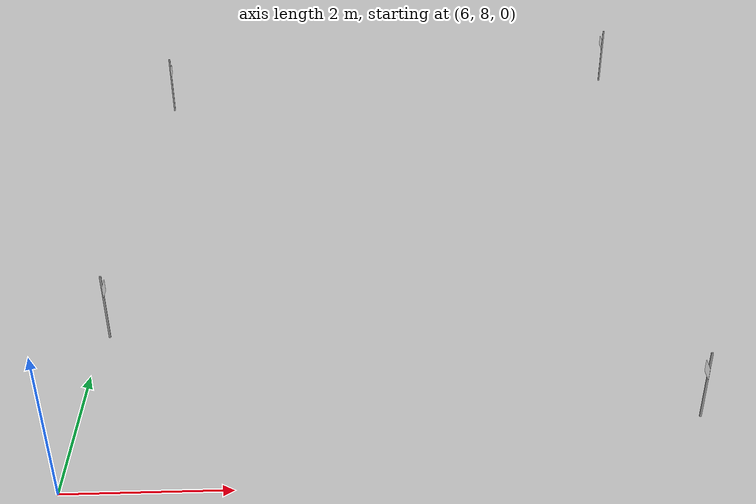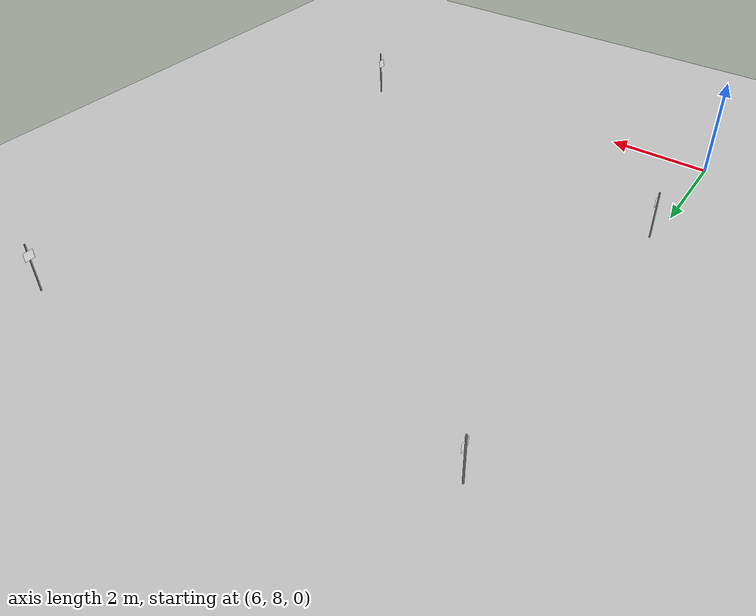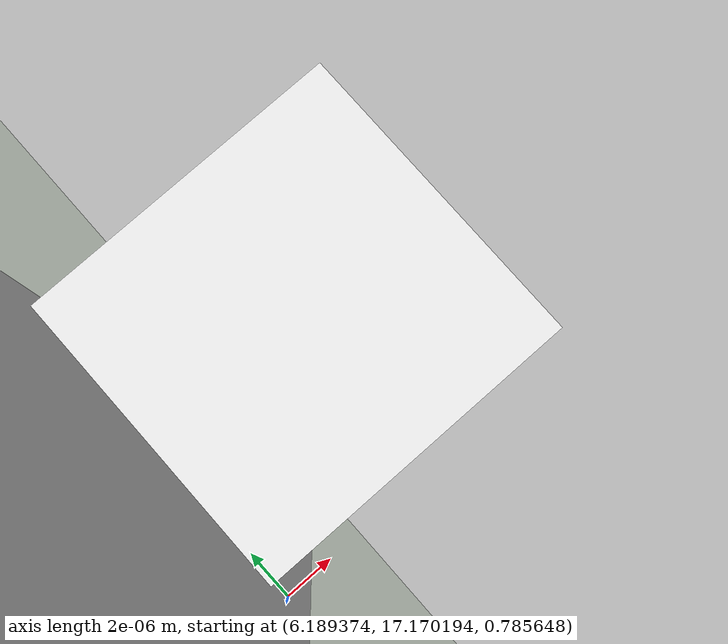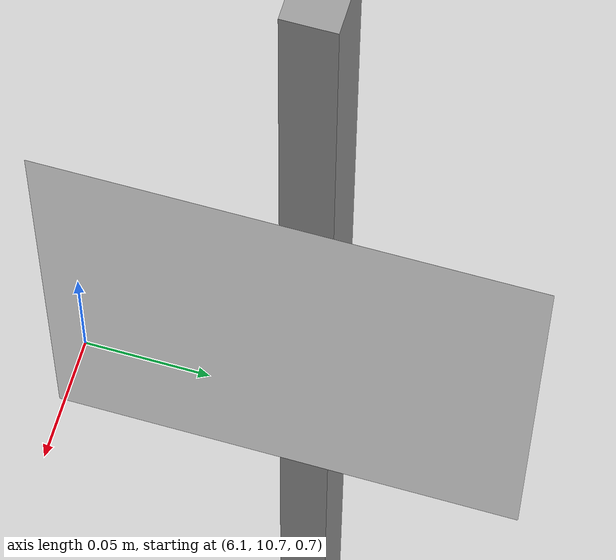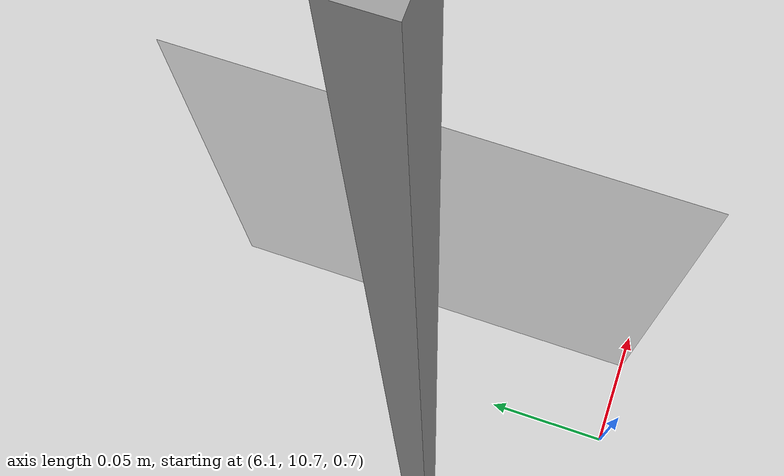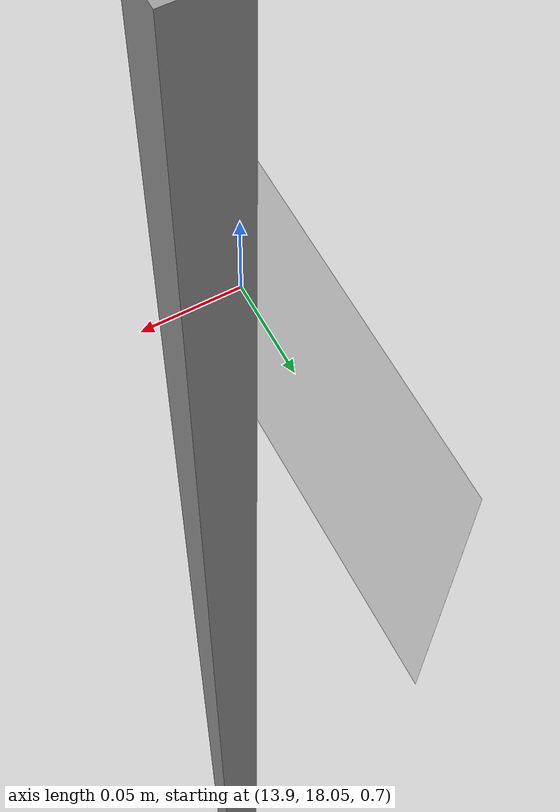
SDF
<sdf version="1.6">
 <world name="default">
  <light name="sun" type="directional">
   <pose>0 0 10 0 -0 0</pose>
   <diffuse>0.8 0.8 0.8 1</diffuse>
   <specular>0.1 0.1 0.1 1</specular>
   <attenuation>
    <range>1000</range>
    <constant>0.9</constant>
    <linear>0.01</linear>
    <quadratic>0.001</quadratic>
   </attenuation>
   <direction>-0.5 0.5 -1</direction>
  </light>
  <model name="ground_plane">
   <static>1</static>
   <link name="link">
    <collision name="collision">
     <geometry><plane><normal>0 0 1</normal><size>100 100</size></plane></geometry>
     <surface><friction><ode><mu>100</mu><mu2>50</mu2></ode></friction></surface>
    </collision>
    <visual name="visual">
     <cast_shadows>0</cast_shadows>
     <geometry><plane><normal>0 0 1</normal><size>100 100</size></plane></geometry>
     <material>
      <script><uri>file://media/materials/scripts/gazebo.material</uri><name>Gazebo/Grey</name></script>
     </material>
    </visual>
   </link>
  </model>
  <gravity>0 0 -9.8</gravity>
  <magnetic_field>6e-06 2.3e-05 -4.2e-05</magnetic_field>
  <atmosphere type="adiabatic"/>
  <physics name="default_physics" default="0" type="ode">
   <max_step_size>0.001</max_step_size>
   <real_time_factor>1</real_time_factor>
   <real_time_update_rate>1000</real_time_update_rate>
  </physics>
  <scene><ambient>0.4 0.4 0.4 1</ambient><background>0.7 0.7 0.7 1</background><shadows>1</shadows></scene>
  <spherical_coordinates>
   <surface_model>EARTH_WGS84</surface_model>
   <latitude_deg>0</latitude_deg>
   <longitude_deg>0</longitude_deg>
   <elevation>0</elevation>
   <heading_deg>0</heading_deg>
  </spherical_coordinates>
  <model name="aruco_visual_marker_0">
   <link name="marker">
    <visual name="visual">
     <geometry><box><size>0.1778 0.1778 1e-05</size></box></geometry>
     <material>
      <script>
       <uri>model://aruco_visual_marker_0/materials/scripts</uri>
       <uri>model://aruco_visual_marker_0/materials/textures</uri>
       <name>ArucoVisualMarker0/Marker</name>
      </script>
      <ambient>1 1 1 1</ambient>
      <diffuse>1 1 1 1</diffuse>
      <specular>0 0 0 1</specular>
      <emissive>1 1 1 0</emissive>
      <shader type="vertex"><normal_map>__default__</normal_map></shader>
     </material>
    </visual>
    <collision name="collision"><geometry><box><size>0.1778 0.1778 1e-05</size></box></geometry></collision>
   </link>
   <link name="marker_pad">
    <pose frame="marker">0 0 -1e-05 0 -0 0</pose>
    <visual name="visual">
     <geometry><box><size>1e-05 1e-05 1e-05</size></box></geometry>
     <material>
      <lighting>1</lighting>
      <script><uri>file://media/materials/scripts/gazebo.material</uri><name>Gazebo/White</name></script>
      <ambient>0.3 0.3 0.3 1</ambient>
      <diffuse>0.7 0.7 0.7 1</diffuse>
      <specular>0.01 0.01 0.01 1</specular>
      <emissive>1 1 1 0</emissive>
      <shader type="vertex"><normal_map>__default__</normal_map></shader>
     </material>
    </visual>
    <collision name="collision"><geometry><box><size>0.1778 0.1778 1e-05</size></box></geometry></collision>
   </link>
   <joint name="marker_JOINT_marker_pad" type="revolute">
    <parent>marker</parent>
    <child>marker_pad</child>
    <axis>
     <xyz>0 0 1</xyz>
     <limit><upper>0</upper><lower>0</lower></limit>
     <use_parent_model_frame>0</use_parent_model_frame>
     <dynamics><spring_reference>0</spring_reference><spring_stiffness>0</spring_stiffness></dynamics>
    </axis>
   </joint>
   <static>1</static>
   <pose>13.5666 9.05153 0.744645 3.14159 -1.57079 3.14159</pose>
  </model>
  <model name="aruco_visual_marker_1">
   <link name="marker">
    <visual name="visual">
     <geometry><box><size>0.1778 0.1778 1e-05</size></box></geometry>
     <material>
      <script>
       <uri>model://aruco_visual_marker_1/materials/scripts</uri>
       <uri>model://aruco_visual_marker_1/materials/textures</uri>
       <name>ArucoVisualMarker1/Marker</name>
      </script>
      <ambient>1 1 1 1</ambient>
      <diffuse>1 1 1 1</diffuse>
      <specular>0 0 0 1</specular>
      <emissive>1 1 1 0</emissive>
      <shader type="vertex"><normal_map>__default__</normal_map></shader>
     </material>
    </visual>
    <collision name="collision"><geometry><box><size>0.1778 0.1778 1e-05</size></box></geometry></collision>
   </link>
   <link name="marker_pad">
    <pose frame="marker">0 0 -1e-05 0 -0 0</pose>
    <visual name="visual">
     <geometry><box><size>1e-05 1e-05 1e-05</size></box></geometry>
     <material>
      <lighting>1</lighting>
      <script><uri>file://media/materials/scripts/gazebo.material</uri><name>Gazebo/White</name></script>
      <ambient>0.3 0.3 0.3 1</ambient>
      <diffuse>0.7 0.7 0.7 1</diffuse>
      <specular>0.01 0.01 0.01 1</specular>
      <emissive>1 1 1 0</emissive>
      <shader type="vertex"><normal_map>__default__</normal_map></shader>
     </material>
    </visual>
    <collision name="collision"><geometry><box><size>0.1778 0.1778 1e-05</size></box></geometry></collision>
   </link>
   <joint name="marker_JOINT_marker_pad" type="revolute">
    <parent>marker</parent>
    <child>marker_pad</child>
    <axis>
     <xyz>0 0 1</xyz>
     <limit><upper>0</upper><lower>0</lower></limit>
     <use_parent_model_frame>0</use_parent_model_frame>
     <dynamics><spring_reference>0</spring_reference><spring_stiffness>0</spring_stiffness></dynamics>
    </axis>
   </joint>
   <static>1</static>
   <pose>13.9238 18.154 0.783528 -3.14159 -1.57079 -3.14159</pose>
  </model>
  <model name="aruco_visual_marker_2">
   <link name="marker">
    <visual name="visual">
     <geometry><box><size>0.1778 0.1778 1e-05</size></box></geometry>
     <material>
      <script>
       <uri>model://aruco_visual_marker_2/materials/scripts</uri>
       <uri>model://aruco_visual_marker_2/materials/textures</uri>
       <name>ArucoVisualMarker2/Marker</name>
      </script>
      <ambient>1 1 1 1</ambient>
      <diffuse>1 1 1 1</diffuse>
      <specular>0 0 0 1</specular>
      <emissive>1 1 1 0</emissive>
      <shader type="vertex"><normal_map>__default__</normal_map></shader>
     </material>
    </visual>
    <collision name="collision"><geometry><box><size>0.1778 0.1778 1e-05</size></box></geometry></collision>
   </link>
   <link name="marker_pad">
    <pose frame="marker">0 0 -1e-05 0 -0 0</pose>
    <visual name="visual">
     <geometry><box><size>1e-05 1e-05 1e-05</size></box></geometry>
     <material>
      <lighting>1</lighting>
      <script><uri>file://media/materials/scripts/gazebo.material</uri><name>Gazebo/White</name></script>
      <ambient>0.3 0.3 0.3 1</ambient>
      <diffuse>0.7 0.7 0.7 1</diffuse>
      <specular>0.01 0.01 0.01 1</specular>
      <emissive>1 1 1 0</emissive>
      <shader type="vertex"><normal_map>__default__</normal_map></shader>
     </material>
    </visual>
    <collision name="collision"><geometry><box><size>0.1778 0.1778 1e-05</size></box></geometry></collision>
   </link>
   <joint name="marker_JOINT_marker_pad" type="revolute">
    <parent>marker</parent>
    <child>marker_pad</child>
    <axis>
     <xyz>0 0 1</xyz>
     <limit><upper>0</upper><lower>0</lower></limit>
     <use_parent_model_frame>0</use_parent_model_frame>
     <dynamics><spring_reference>0</spring_reference><spring_stiffness>0</spring_stiffness></dynamics>
    </axis>
   </joint>
   <static>1</static>
   <pose>6.1317 10.7899 0.803579 -3e-06 -1.57079 3.14159</pose>
  </model>
  <model name="aruco_visual_marker_3">
   <link name="marker">
    <visual name="visual">
     <geometry><box><size>0.1778 0.1778 1e-05</size></box></geometry>
     <material>
      <script>
       <uri>model://aruco_visual_marker_3/materials/scripts</uri>
       <uri>model://aruco_visual_marker_3/materials/textures</uri>
       <name>ArucoVisualMarker3/Marker</name>
      </script>
      <ambient>1 1 1 1</ambient>
      <diffuse>1 1 1 1</diffuse>
      <specular>0 0 0 1</specular>
      <emissive>1 1 1 0</emissive>
      <shader type="vertex"><normal_map>__default__</normal_map></shader>
     </material>
    </visual>
    <collision name="collision"><geometry><box><size>0.1778 0.1778 1e-05</size></box></geometry></collision>
   </link>
   <link name="marker_pad">
    <pose frame="marker">0 0 -1e-05 0 -0 0</pose>
    <visual name="visual">
     <geometry><box><size>1e-05 1e-05 1e-05</size></box></geometry>
     <material>
      <lighting>1</lighting>
      <script><uri>file://media/materials/scripts/gazebo.material</uri><name>Gazebo/White</name></script>
      <ambient>0.3 0.3 0.3 1</ambient>
      <diffuse>0.7 0.7 0.7 1</diffuse>
      <specular>0.01 0.01 0.01 1</specular>
      <emissive>1 1 1 0</emissive>
      <shader type="vertex"><normal_map>__default__</normal_map></shader>
     </material>
    </visual>
    <collision name="collision"><geometry><box><size>0.1778 0.1778 1e-05</size></box></geometry></collision>
   </link>
   <joint name="marker_JOINT_marker_pad" type="revolute">
    <parent>marker</parent>
    <child>marker_pad</child>
    <axis>
     <xyz>0 0 1</xyz>
     <limit><upper>0</upper><lower>0</lower></limit>
     <use_parent_model_frame>0</use_parent_model_frame>
     <dynamics><spring_reference>0</spring_reference><spring_stiffness>0</spring_stiffness></dynamics>
    </axis>
   </joint>
   <static>1</static>
   <pose>6.18939 17.1702 0.785653 -0.00472 -1.57079 -3.13688</pose>
  </model>
  <model name="unit_box_0_0">
   <link name="link">
    <inertial>
     <mass>1</mass>
     <inertia>
      <ixx>0.166667</ixx>
      <ixy>0</ixy>
      <ixz>0</ixz>
      <iyy>0.166667</iyy>
      <iyz>0</iyz>
      <izz>0.166667</izz>
     </inertia>
    </inertial>
    <visual name="visual">
     <geometry><box><size>0.025351 0.018729 1</size></box></geometry>
     <material>
      <script><name>Gazebo/Grey</name><uri>file://media/materials/scripts/gazebo.material</uri></script>
      <ambient>1 1 1 1</ambient>
      <diffuse>0.7 0.7 0.7 1</diffuse>
      <specular>0.01 0.01 0.01 1</specular>
      <emissive>0.7 0.7 0.7 1</emissive>
      <shader type="vertex"><normal_map>__default__</normal_map></shader>
     </material>
    </visual>
    <collision name="collision">
     <geometry><box><size>0.025351 0.018729 1</size></box></geometry>
     <surface>
      <friction>
       <ode><mu>1</mu><mu2>1</mu2><fdir1>0 0 0</fdir1><slip1>0</slip1><slip2>0</slip2></ode>
       <torsional>
        <coefficient>1</coefficient>
        <patch_radius>0</patch_radius>
        <surface_radius>0</surface_radius>
        <use_patch_radius>1</use_patch_radius>
        <ode><slip>0</slip></ode>
       </torsional>
      </friction>
      <bounce><restitution_coefficient>0</restitution_coefficient><threshold>1e+06</threshold></bounce>
      <contact>
       <collide_without_contact>0</collide_without_contact>
       <collide_without_contact_bitmask>1</collide_without_contact_bitmask>
       <collide_bitmask>1</collide_bitmask>
       <ode>
        <soft_cfm>0</soft_cfm>
        <soft_erp>0.2</soft_erp>
        <kp>1e+13</kp>
        <kd>1</kd>
        <max_vel>0.01</max_vel>
        <min_depth>0</min_depth>
       </ode>
       <bullet>
        <split_impulse>1</split_impulse>
        <split_impulse_penetration_threshold>-0.01</split_impulse_penetration_threshold>
        <soft_cfm>0</soft_cfm>
        <soft_erp>0.2</soft_erp>
        <kp>1e+13</kp>
        <kd>1</kd>
       </bullet>
      </contact>
     </surface>
    </collision>
   </link>
   <static>0</static>
   <pose>13.9591 18.1431 0.5 2e-06 1.4e-05 0.000696</pose>
  </model>
  <model name="unit_box_0_0_clone">
   <link name="link">
    <inertial>
     <mass>1</mass>
     <inertia>
      <ixx>0.166667</ixx>
      <ixy>0</ixy>
      <ixz>0</ixz>
      <iyy>0.166667</iyy>
      <iyz>0</iyz>
      <izz>0.166667</izz>
     </inertia>
    </inertial>
    <visual name="visual">
     <geometry><box><size>0.025351 0.018729 1</size></box></geometry>
     <material>
      <script><name>Gazebo/Grey</name><uri>file://media/materials/scripts/gazebo.material</uri></script>
      <ambient>1 1 1 1</ambient>
      <diffuse>0.7 0.7 0.7 1</diffuse>
      <specular>0.01 0.01 0.01 1</specular>
      <emissive>0.7 0.7 0.7 1</emissive>
      <shader type="vertex"><normal_map>__default__</normal_map></shader>
     </material>
    </visual>
    <collision name="collision">
     <geometry><box><size>0.025351 0.018729 1</size></box></geometry>
     <surface>
      <friction>
       <ode><mu>1</mu><mu2>1</mu2><fdir1>0 0 0</fdir1><slip1>0</slip1><slip2>0</slip2></ode>
       <torsional>
        <coefficient>1</coefficient>
        <patch_radius>0</patch_radius>
        <surface_radius>0</surface_radius>
        <use_patch_radius>1</use_patch_radius>
        <ode><slip>0</slip></ode>
       </torsional>
      </friction>
      <bounce><restitution_coefficient>0</restitution_coefficient><threshold>1e+06</threshold></bounce>
      <contact>
       <collide_without_contact>0</collide_without_contact>
       <collide_without_contact_bitmask>1</collide_without_contact_bitmask>
       <collide_bitmask>1</collide_bitmask>
       <ode>
        <soft_cfm>0</soft_cfm>
        <soft_erp>0.2</soft_erp>
        <kp>1e+13</kp>
        <kd>1</kd>
        <max_vel>0.01</max_vel>
        <min_depth>0</min_depth>
       </ode>
       <bullet>
        <split_impulse>1</split_impulse>
        <split_impulse_penetration_threshold>-0.01</split_impulse_penetration_threshold>
        <soft_cfm>0</soft_cfm>
        <soft_erp>0.2</soft_erp>
        <kp>1e+13</kp>
        <kd>1</kd>
       </bullet>
      </contact>
     </surface>
    </collision>
   </link>
   <static>0</static>
   <pose>13.5892 9.05571 0.5 -7e-06 -1.2e-05 0.000374</pose>
  </model>
  <model name="unit_box_0_0_clone_0">
   <link name="link">
    <inertial>
     <mass>1</mass>
     <inertia>
      <ixx>0.166667</ixx>
      <ixy>0</ixy>
      <ixz>0</ixz>
      <iyy>0.166667</iyy>
      <iyz>0</iyz>
      <izz>0.166667</izz>
     </inertia>
    </inertial>
    <visual name="visual">
     <geometry><box><size>0.025351 0.018729 1</size></box></geometry>
     <material>
      <script><name>Gazebo/Grey</name><uri>file://media/materials/scripts/gazebo.material</uri></script>
      <ambient>1 1 1 1</ambient>
      <diffuse>0.7 0.7 0.7 1</diffuse>
      <specular>0.01 0.01 0.01 1</specular>
      <emissive>0.7 0.7 0.7 1</emissive>
      <shader type="vertex"><normal_map>__default__</normal_map></shader>
     </material>
    </visual>
    <collision name="collision">
     <geometry><box><size>0.025351 0.018729 1</size></box></geometry>
     <surface>
      <friction>
       <ode><mu>1</mu><mu2>1</mu2><fdir1>0 0 0</fdir1><slip1>0</slip1><slip2>0</slip2></ode>
       <torsional>
        <coefficient>1</coefficient>
        <patch_radius>0</patch_radius>
        <surface_radius>0</surface_radius>
        <use_patch_radius>1</use_patch_radius>
        <ode><slip>0</slip></ode>
       </torsional>
      </friction>
      <bounce><restitution_coefficient>0</restitution_coefficient><threshold>1e+06</threshold></bounce>
      <contact>
       <collide_without_contact>0</collide_without_contact>
       <collide_without_contact_bitmask>1</collide_without_contact_bitmask>
       <collide_bitmask>1</collide_bitmask>
       <ode>
        <soft_cfm>0</soft_cfm>
        <soft_erp>0.2</soft_erp>
        <kp>1e+13</kp>
        <kd>1</kd>
        <max_vel>0.01</max_vel>
        <min_depth>0</min_depth>
       </ode>
       <bullet>
        <split_impulse>1</split_impulse>
        <split_impulse_penetration_threshold>-0.01</split_impulse_penetration_threshold>
        <soft_cfm>0</soft_cfm>
        <soft_erp>0.2</soft_erp>
        <kp>1e+13</kp>
        <kd>1</kd>
       </bullet>
      </contact>
     </surface>
    </collision>
   </link>
   <static>0</static>
   <pose>6.11004 10.7941 0.5 1e-06 -1.1e-05 0.000145</pose>
  </model>
  <model name="unit_box_0_0_clone_1">
   <link name="link">
    <inertial>
     <mass>1</mass>
     <inertia>
      <ixx>0.166667</ixx>
      <ixy>0</ixy>
      <ixz>0</ixz>
      <iyy>0.166667</iyy>
      <iyz>0</iyz>
      <izz>0.166667</izz>
     </inertia>
    </inertial>
    <visual name="visual">
     <geometry><box><size>0.025351 0.018729 1</size></box></geometry>
     <material>
      <script><name>Gazebo/Grey</name><uri>file://media/materials/scripts/gazebo.material</uri></script>
      <ambient>1 1 1 1</ambient>
      <diffuse>0.7 0.7 0.7 1</diffuse>
      <specular>0.01 0.01 0.01 1</specular>
      <emissive>0.7 0.7 0.7 1</emissive>
      <shader type="vertex"><normal_map>__default__</normal_map></shader>
     </material>
    </visual>
    <collision name="collision">
     <geometry><box><size>0.025351 0.018729 1</size></box></geometry>
     <surface>
      <friction>
       <ode><mu>1</mu><mu2>1</mu2><fdir1>0 0 0</fdir1><slip1>0</slip1><slip2>0</slip2></ode>
       <torsional>
        <coefficient>1</coefficient>
        <patch_radius>0</patch_radius>
        <surface_radius>0</surface_radius>
        <use_patch_radius>1</use_patch_radius>
        <ode><slip>0</slip></ode>
       </torsional>
      </friction>
      <bounce><restitution_coefficient>0</restitution_coefficient><threshold>1e+06</threshold></bounce>
      <contact>
       <collide_without_contact>0</collide_without_contact>
       <collide_without_contact_bitmask>1</collide_without_contact_bitmask>
       <collide_bitmask>1</collide_bitmask>
       <ode>
        <soft_cfm>0</soft_cfm>
        <soft_erp>0.2</soft_erp>
        <kp>1e+13</kp>
        <kd>1</kd>
        <max_vel>0.01</max_vel>
        <min_depth>0</min_depth>
       </ode>
       <bullet>
        <split_impulse>1</split_impulse>
        <split_impulse_penetration_threshold>-0.01</split_impulse_penetration_threshold>
        <soft_cfm>0</soft_cfm>
        <soft_erp>0.2</soft_erp>
        <kp>1e+13</kp>
        <kd>1</kd>
       </bullet>
      </contact>
     </surface>
    </collision>
   </link>
   <static>0</static>
   <pose>6.17279 17.1753 0.5 -2e-06 -2e-06 0.000709</pose>
  </model>
 </world>
</sdf>
